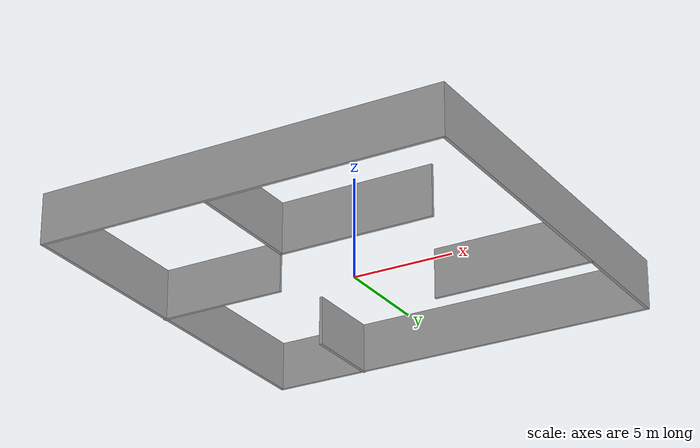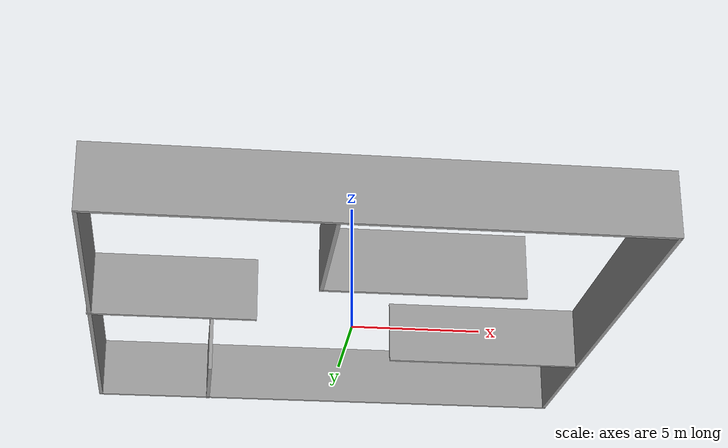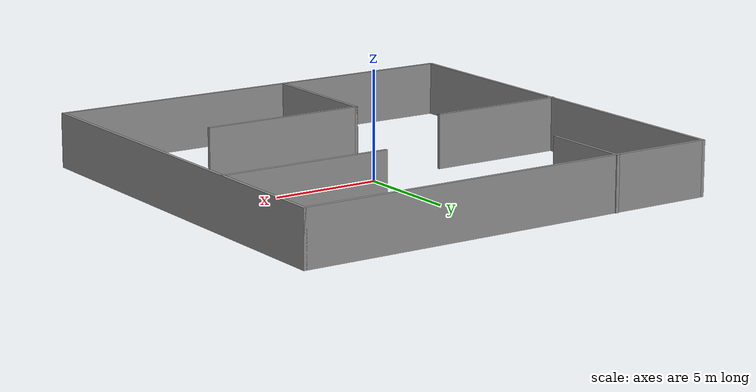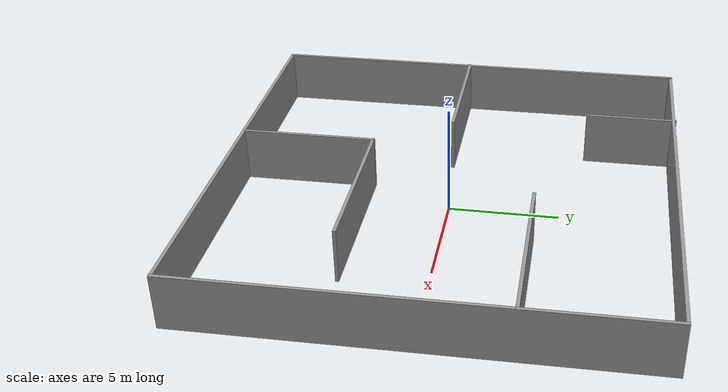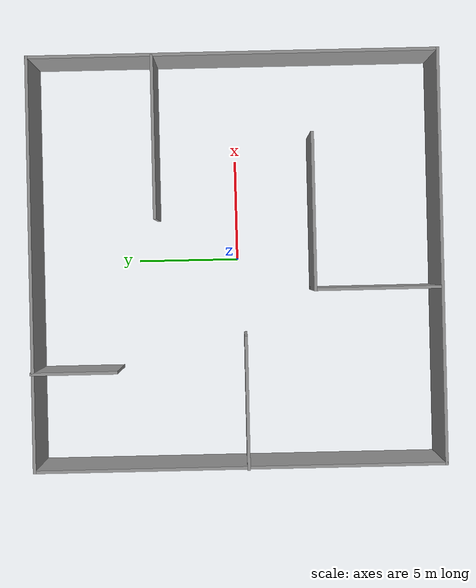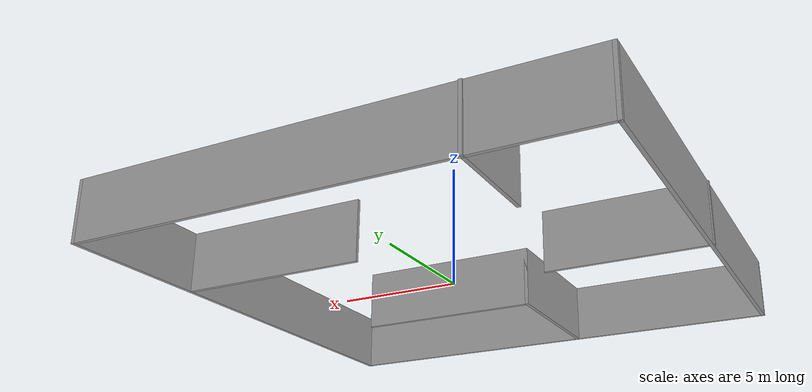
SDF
<?xml version='1.0'?>
<sdf version='1.7'>
  <model name='ExampleMap'>
    <pose>-0.080381 0.079739 0 0 -0 0</pose>
    <link name='Wall_48'>
      <collision name='Wall_48_Collision'>
        <geometry>
          <box>
            <size>20.25 0.15 2.5</size>
          </box>
        </geometry>
        <pose>0 0 1.25 0 -0 0</pose>
      </collision>
      <visual name='Wall_48_Visual'>
        <pose>0 0 1.25 0 -0 0</pose>
        <geometry>
          <box>
            <size>20.25 0.15 2.5</size>
          </box>
        </geometry>
        <material>
          <script>
            <uri>file://media/materials/scripts/gazebo.material</uri>
            <name>Gazebo/Grey</name>
          </script>
          <ambient>1 1 1 1</ambient>
        </material>
        <meta>
          <layer>0</layer>
        </meta>
      </visual>
      <pose>0.026153 9.94613 0 0 -0 0</pose>
    </link>
    <link name='Wall_51'>
      <collision name='Wall_51_Collision'>
        <geometry>
          <box>
            <size>20.25 0.15 2.5</size>
          </box>
        </geometry>
        <pose>0 0 1.25 0 -0 0</pose>
      </collision>
      <visual name='Wall_51_Visual'>
        <pose>0 0 1.25 0 -0 0</pose>
        <geometry>
          <box>
            <size>20.25 0.15 2.5</size>
          </box>
        </geometry>
        <material>
          <script>
            <uri>file://media/materials/scripts/gazebo.material</uri>
            <name>Gazebo/Grey</name>
          </script>
          <ambient>1 1 1 1</ambient>
        </material>
        <meta>
          <layer>0</layer>
        </meta>
      </visual>
      <pose>0.026153 -10.0039 0 0 -0 3.14159</pose>
    </link>
    <link name='Wall_54'>
      <collision name='Wall_54_Collision'>
        <geometry>
          <box>
            <size>20.1 0.15 2.5</size>
          </box>
        </geometry>
        <pose>0 0 1.25 0 -0 0</pose>
      </collision>
      <visual name='Wall_54_Visual'>
        <pose>0 0 1.25 0 -0 0</pose>
        <geometry>
          <box>
            <size>20.1 0.15 2.5</size>
          </box>
        </geometry>
        <material>
          <script>
            <uri>file://media/materials/scripts/gazebo.material</uri>
            <name>Gazebo/Grey</name>
          </script>
          <ambient>1 1 1 1</ambient>
        </material>
        <meta>
          <layer>0</layer>
        </meta>
      </visual>
      <pose>-10.0238 -0.028865 0 0 -0 -1.5708</pose>
    </link>
    <link name='Wall_56'>
      <collision name='Wall_56_Collision'>
        <geometry>
          <box>
            <size>20.1 0.15 2.5</size>
          </box>
        </geometry>
        <pose>0 0 1.25 0 -0 0</pose>
      </collision>
      <visual name='Wall_56_Visual'>
        <pose>0 0 1.25 0 -0 0</pose>
        <geometry>
          <box>
            <size>20.1 0.15 2.5</size>
          </box>
        </geometry>
        <material>
          <script>
            <uri>file://media/materials/scripts/gazebo.material</uri>
            <name>Gazebo/Grey</name>
          </script>
          <ambient>1 1 1 1</ambient>
        </material>
        <meta>
          <layer>0</layer>
        </meta>
      </visual>
      <pose>10.0762 -0.028865 0 0 -0 -1.5708</pose>
    </link>
    <link name='Wall_58'>
      <collision name='Wall_58_Collision'>
        <geometry>
          <box>
            <size>8 0.15 2.5</size>
          </box>
        </geometry>
        <pose>0 0 1.25 0 -0 0</pose>
      </collision>
      <visual name='Wall_58_Visual'>
        <pose>0 0 1.25 0 -0 0</pose>
        <geometry>
          <box>
            <size>8 0.15 2.5</size>
          </box>
        </geometry>
        <material>
          <script>
            <uri>file://media/materials/scripts/gazebo.material</uri>
            <name>Gazebo/Grey</name>
          </script>
          <ambient>1 1 1 1</ambient>
        </material>
        <meta>
          <layer>0</layer>
        </meta>
      </visual>
      <pose>6.10891 3.87406 0 0 -0 3.14159</pose>
    </link>
    <link name='Wall_60'>
      <collision name='Wall_60_Collision'>
        <geometry>
          <box>
            <size>6.5 0.15 2.5</size>
          </box>
        </geometry>
        <pose>0 0 1.25 0 -0 0</pose>
      </collision>
      <visual name='Wall_60_Visual'>
        <pose>0 0 1.25 0 -0 0</pose>
        <geometry>
          <box>
            <size>6.5 0.15 2.5</size>
          </box>
        </geometry>
        <material>
          <script>
            <uri>file://media/materials/scripts/gazebo.material</uri>
            <name>Gazebo/Grey</name>
          </script>
          <ambient>1 1 1 1</ambient>
        </material>
        <meta>
          <layer>0</layer>
        </meta>
      </visual>
      <pose>-6.90115 -0.427555 0 0 -0 0</pose>
    </link>
    <link name='Wall_62'>
      <collision name='Wall_62_Collision'>
        <geometry>
          <box>
            <size>6.25 0.15 2.5</size>
          </box>
        </geometry>
        <pose>0 0 1.25 0 -0 0</pose>
      </collision>
      <visual name='Wall_62_Visual'>
        <pose>0 0 1.25 0 -0 0</pose>
        <geometry>
          <box>
            <size>6.25 0.15 2.5</size>
          </box>
        </geometry>
        <material>
          <script>
            <uri>file://media/materials/scripts/gazebo.material</uri>
            <name>Gazebo/Grey</name>
          </script>
          <ambient>1 1 1 1</ambient>
        </material>
        <meta>
          <layer>0</layer>
        </meta>
      </visual>
      <pose>-1.47292 -6.89488 0 0 -0 1.5708</pose>
    </link>
    <link name='Wall_63'>
      <collision name='Wall_63_Collision'>
        <geometry>
          <box>
            <size>7.75 0.15 2.5</size>
          </box>
        </geometry>
        <pose>0 0 1.25 0 -0 0</pose>
      </collision>
      <visual name='Wall_63_Visual'>
        <pose>0 0 1.25 0 -0 0</pose>
        <geometry>
          <box>
            <size>7.75 0.15 2.5</size>
          </box>
        </geometry>
        <material>
          <script>
            <uri>file://media/materials/scripts/gazebo.material</uri>
            <name>Gazebo/Grey</name>
          </script>
          <ambient>1 1 1 1</ambient>
        </material>
        <meta>
          <layer>0</layer>
        </meta>
      </visual>
      <pose>2.32708 -3.84488 0 0 -0 0</pose>
    </link>
    <link name='Wall_66'>
      <collision name='Wall_66_Collision'>
        <geometry>
          <box>
            <size>4.25 0.15 2.5</size>
          </box>
        </geometry>
        <pose>0 0 1.25 0 -0 0</pose>
      </collision>
      <visual name='Wall_66_Visual'>
        <pose>0 0 1.25 0 -0 0</pose>
        <geometry>
          <box>
            <size>4.25 0.15 2.5</size>
          </box>
        </geometry>
        <material>
          <script>
            <uri>file://media/materials/scripts/gazebo.material</uri>
            <name>Gazebo/Grey</name>
          </script>
          <ambient>1 1 1 1</ambient>
        </material>
        <meta>
          <layer>0</layer>
        </meta>
      </visual>
      <pose>-5.2906 7.95387 0 0 -0 -1.5708</pose>
    </link>
    <static>1</static>
  </model>
</sdf>
